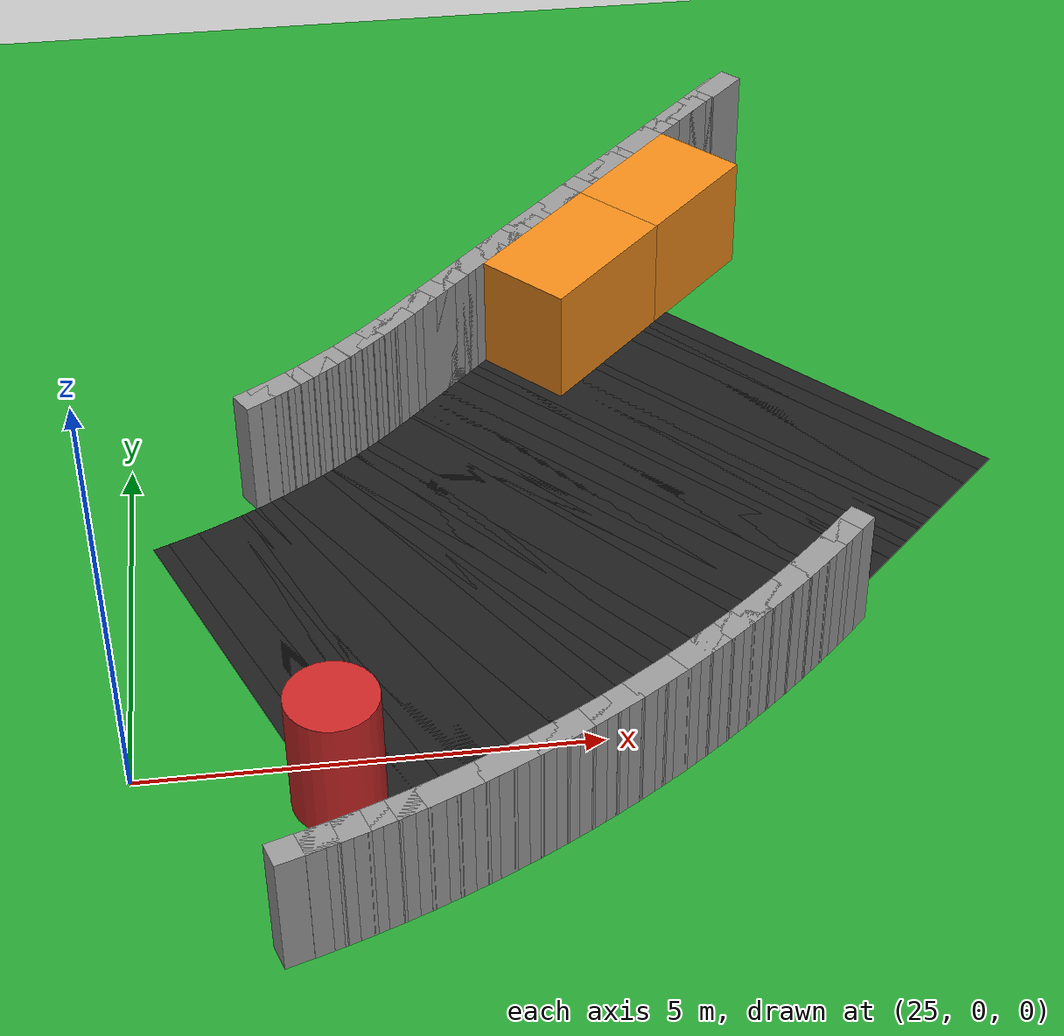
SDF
<sdf version="1.6">
 <world name="obstacle_asymturn">
  <include><uri>model://sun</uri></include>
  <model name="ground_plane">
   <static>true</static>
   <link name="link">
    <collision name="collision">
     <surface><friction><ode><mu>100</mu><mu2>50</mu2></ode></friction></surface>
     <geometry><plane><normal>0 0 1</normal><size>120 120</size></plane></geometry>
    </collision>
    <visual name="visual">
     <geometry><plane><normal>0 0 1</normal><size>120 120</size></plane></geometry>
     <material>
      <script><uri>file://media/materials/scripts/gazebo.material</uri><name>Gazebo/Green</name></script>
     </material>
    </visual>
   </link>
  </model>
  <model name="curbR_103">
   <static>true</static>
   <pose>26.771 -2.378 0.750 0 0 0.32036</pose>
   <link name="link">
    <collision name="collision"><geometry><box><size>0.673 0.300 1.500</size></box></geometry></collision>
    <visual name="visual">
     <geometry><box><size>0.673 0.300 1.500</size></box></geometry>
     <material>
      <script><uri>file://media/materials/scripts/gazebo.material</uri><name>Gazebo/Grey</name></script>
     </material>
    </visual>
   </link>
  </model>
  <model name="curbR_104">
   <static>true</static>
   <pose>27.067 -2.277 0.750 0 0 0.34103</pose>
   <link name="link">
    <collision name="collision"><geometry><box><size>0.673 0.300 1.500</size></box></geometry></collision>
    <visual name="visual">
     <geometry><box><size>0.673 0.300 1.500</size></box></geometry>
     <material>
      <script><uri>file://media/materials/scripts/gazebo.material</uri><name>Gazebo/Grey</name></script>
     </material>
    </visual>
   </link>
  </model>
  <model name="curbR_105">
   <static>true</static>
   <pose>27.361 -2.169 0.750 0 0 0.36170</pose>
   <link name="link">
    <collision name="collision"><geometry><box><size>0.673 0.300 1.500</size></box></geometry></collision>
    <visual name="visual">
     <geometry><box><size>0.673 0.300 1.500</size></box></geometry>
     <material>
      <script><uri>file://media/materials/scripts/gazebo.material</uri><name>Gazebo/Grey</name></script>
     </material>
    </visual>
   </link>
  </model>
  <model name="curbR_106">
   <static>true</static>
   <pose>27.652 -2.055 0.750 0 0 0.38236</pose>
   <link name="link">
    <collision name="collision"><geometry><box><size>0.673 0.300 1.500</size></box></geometry></collision>
    <visual name="visual">
     <geometry><box><size>0.673 0.300 1.500</size></box></geometry>
     <material>
      <script><uri>file://media/materials/scripts/gazebo.material</uri><name>Gazebo/Grey</name></script>
     </material>
    </visual>
   </link>
  </model>
  <model name="asphalt_107">
   <static>true</static>
   <pose>26.706 0.962 0.005 0 0 0.40303</pose>
   <link name="link">
    <visual name="visual">
     <geometry><box><size>0.608 6.000 0.010</size></box></geometry>
     <material>
      <script><uri>file://media/materials/scripts/gazebo.material</uri><name>Gazebo/Black</name></script>
     </material>
    </visual>
   </link>
  </model>
  <model name="curbR_107">
   <static>true</static>
   <pose>27.942 -1.935 0.750 0 0 0.40303</pose>
   <link name="link">
    <collision name="collision"><geometry><box><size>0.673 0.300 1.500</size></box></geometry></collision>
    <visual name="visual">
     <geometry><box><size>0.673 0.300 1.500</size></box></geometry>
     <material>
      <script><uri>file://media/materials/scripts/gazebo.material</uri><name>Gazebo/Grey</name></script>
     </material>
    </visual>
   </link>
  </model>
  <model name="asphalt_108">
   <static>true</static>
   <pose>26.933 1.062 0.005 0 0 0.42370</pose>
   <link name="link">
    <visual name="visual">
     <geometry><box><size>0.608 6.000 0.010</size></box></geometry>
     <material>
      <script><uri>file://media/materials/scripts/gazebo.material</uri><name>Gazebo/Black</name></script>
     </material>
    </visual>
   </link>
  </model>
  <model name="curbR_108">
   <static>true</static>
   <pose>28.228 -1.810 0.750 0 0 0.42370</pose>
   <link name="link">
    <collision name="collision"><geometry><box><size>0.673 0.300 1.500</size></box></geometry></collision>
    <visual name="visual">
     <geometry><box><size>0.673 0.300 1.500</size></box></geometry>
     <material>
      <script><uri>file://media/materials/scripts/gazebo.material</uri><name>Gazebo/Grey</name></script>
     </material>
    </visual>
   </link>
  </model>
  <model name="asphalt_109">
   <static>true</static>
   <pose>27.158 1.166 0.005 0 0 0.44437</pose>
   <link name="link">
    <visual name="visual">
     <geometry><box><size>0.608 6.000 0.010</size></box></geometry>
     <material>
      <script><uri>file://media/materials/scripts/gazebo.material</uri><name>Gazebo/Black</name></script>
     </material>
    </visual>
   </link>
  </model>
  <model name="curbR_109">
   <static>true</static>
   <pose>28.513 -1.678 0.750 0 0 0.44437</pose>
   <link name="link">
    <collision name="collision"><geometry><box><size>0.673 0.300 1.500</size></box></geometry></collision>
    <visual name="visual">
     <geometry><box><size>0.673 0.300 1.500</size></box></geometry>
     <material>
      <script><uri>file://media/materials/scripts/gazebo.material</uri><name>Gazebo/Grey</name></script>
     </material>
    </visual>
   </link>
  </model>
  <model name="asphalt_110">
   <static>true</static>
   <pose>27.381 1.275 0.005 0 0 0.46504</pose>
   <link name="link">
    <visual name="visual">
     <geometry><box><size>0.608 6.000 0.010</size></box></geometry>
     <material>
      <script><uri>file://media/materials/scripts/gazebo.material</uri><name>Gazebo/Black</name></script>
     </material>
    </visual>
   </link>
  </model>
  <model name="curbR_110">
   <static>true</static>
   <pose>28.794 -1.540 0.750 0 0 0.46504</pose>
   <link name="link">
    <collision name="collision"><geometry><box><size>0.673 0.300 1.500</size></box></geometry></collision>
    <visual name="visual">
     <geometry><box><size>0.673 0.300 1.500</size></box></geometry>
     <material>
      <script><uri>file://media/materials/scripts/gazebo.material</uri><name>Gazebo/Grey</name></script>
     </material>
    </visual>
   </link>
  </model>
  <model name="asphalt_111">
   <static>true</static>
   <pose>27.602 1.388 0.005 0 0 0.48571</pose>
   <link name="link">
    <visual name="visual">
     <geometry><box><size>0.608 6.000 0.010</size></box></geometry>
     <material>
      <script><uri>file://media/materials/scripts/gazebo.material</uri><name>Gazebo/Black</name></script>
     </material>
    </visual>
   </link>
  </model>
  <model name="curbR_111">
   <static>true</static>
   <pose>29.072 -1.397 0.750 0 0 0.48571</pose>
   <link name="link">
    <collision name="collision"><geometry><box><size>0.673 0.300 1.500</size></box></geometry></collision>
    <visual name="visual">
     <geometry><box><size>0.673 0.300 1.500</size></box></geometry>
     <material>
      <script><uri>file://media/materials/scripts/gazebo.material</uri><name>Gazebo/Grey</name></script>
     </material>
    </visual>
   </link>
  </model>
  <model name="asphalt_112">
   <static>true</static>
   <pose>27.820 1.506 0.005 0 0 0.50638</pose>
   <link name="link">
    <visual name="visual">
     <geometry><box><size>0.608 6.000 0.010</size></box></geometry>
     <material>
      <script><uri>file://media/materials/scripts/gazebo.material</uri><name>Gazebo/Black</name></script>
     </material>
    </visual>
   </link>
  </model>
  <model name="curbR_112">
   <static>true</static>
   <pose>29.348 -1.248 0.750 0 0 0.50638</pose>
   <link name="link">
    <collision name="collision"><geometry><box><size>0.673 0.300 1.500</size></box></geometry></collision>
    <visual name="visual">
     <geometry><box><size>0.673 0.300 1.500</size></box></geometry>
     <material>
      <script><uri>file://media/materials/scripts/gazebo.material</uri><name>Gazebo/Grey</name></script>
     </material>
    </visual>
   </link>
  </model>
  <model name="asphalt_113">
   <static>true</static>
   <pose>28.036 1.629 0.005 0 0 0.52704</pose>
   <link name="link">
    <visual name="visual">
     <geometry><box><size>0.608 6.000 0.010</size></box></geometry>
     <material>
      <script><uri>file://media/materials/scripts/gazebo.material</uri><name>Gazebo/Black</name></script>
     </material>
    </visual>
   </link>
  </model>
  <model name="curbR_113">
   <static>true</static>
   <pose>29.620 -1.093 0.750 0 0 0.52704</pose>
   <link name="link">
    <collision name="collision"><geometry><box><size>0.673 0.300 1.500</size></box></geometry></collision>
    <visual name="visual">
     <geometry><box><size>0.673 0.300 1.500</size></box></geometry>
     <material>
      <script><uri>file://media/materials/scripts/gazebo.material</uri><name>Gazebo/Grey</name></script>
     </material>
    </visual>
   </link>
  </model>
  <model name="asphalt_114">
   <static>true</static>
   <pose>28.249 1.756 0.005 0 0 0.54771</pose>
   <link name="link">
    <visual name="visual">
     <geometry><box><size>0.608 6.000 0.010</size></box></geometry>
     <material>
      <script><uri>file://media/materials/scripts/gazebo.material</uri><name>Gazebo/Black</name></script>
     </material>
    </visual>
   </link>
  </model>
  <model name="curbL_114">
   <static>true</static>
   <pose>26.608 4.445 0.750 0 0 0.54771</pose>
   <link name="link">
    <collision name="collision"><geometry><box><size>0.543 0.300 1.500</size></box></geometry></collision>
    <visual name="visual">
     <geometry><box><size>0.543 0.300 1.500</size></box></geometry>
     <material>
      <script><uri>file://media/materials/scripts/gazebo.material</uri><name>Gazebo/Grey</name></script>
     </material>
    </visual>
   </link>
  </model>
  <model name="curbR_114">
   <static>true</static>
   <pose>29.889 -0.933 0.750 0 0 0.54771</pose>
   <link name="link">
    <collision name="collision"><geometry><box><size>0.673 0.300 1.500</size></box></geometry></collision>
    <visual name="visual">
     <geometry><box><size>0.673 0.300 1.500</size></box></geometry>
     <material>
      <script><uri>file://media/materials/scripts/gazebo.material</uri><name>Gazebo/Grey</name></script>
     </material>
    </visual>
   </link>
  </model>
  <model name="asphalt_115">
   <static>true</static>
   <pose>28.459 1.887 0.005 0 0 0.56838</pose>
   <link name="link">
    <visual name="visual">
     <geometry><box><size>0.608 6.000 0.010</size></box></geometry>
     <material>
      <script><uri>file://media/materials/scripts/gazebo.material</uri><name>Gazebo/Black</name></script>
     </material>
    </visual>
   </link>
  </model>
  <model name="curbL_115">
   <static>true</static>
   <pose>26.764 4.542 0.750 0 0 0.56838</pose>
   <link name="link">
    <collision name="collision"><geometry><box><size>0.543 0.300 1.500</size></box></geometry></collision>
    <visual name="visual">
     <geometry><box><size>0.543 0.300 1.500</size></box></geometry>
     <material>
      <script><uri>file://media/materials/scripts/gazebo.material</uri><name>Gazebo/Grey</name></script>
     </material>
    </visual>
   </link>
  </model>
  <model name="curbR_115">
   <static>true</static>
   <pose>30.154 -0.767 0.750 0 0 0.56838</pose>
   <link name="link">
    <collision name="collision"><geometry><box><size>0.673 0.300 1.500</size></box></geometry></collision>
    <visual name="visual">
     <geometry><box><size>0.673 0.300 1.500</size></box></geometry>
     <material>
      <script><uri>file://media/materials/scripts/gazebo.material</uri><name>Gazebo/Grey</name></script>
     </material>
    </visual>
   </link>
  </model>
  <model name="asphalt_116">
   <static>true</static>
   <pose>28.667 2.023 0.005 0 0 0.58905</pose>
   <link name="link">
    <visual name="visual">
     <geometry><box><size>0.608 6.000 0.010</size></box></geometry>
     <material>
      <script><uri>file://media/materials/scripts/gazebo.material</uri><name>Gazebo/Black</name></script>
     </material>
    </visual>
   </link>
  </model>
  <model name="curbL_116">
   <static>true</static>
   <pose>26.917 4.642 0.750 0 0 0.58905</pose>
   <link name="link">
    <collision name="collision"><geometry><box><size>0.543 0.300 1.500</size></box></geometry></collision>
    <visual name="visual">
     <geometry><box><size>0.543 0.300 1.500</size></box></geometry>
     <material>
      <script><uri>file://media/materials/scripts/gazebo.material</uri><name>Gazebo/Grey</name></script>
     </material>
    </visual>
   </link>
  </model>
  <model name="curbR_116">
   <static>true</static>
   <pose>30.417 -0.596 0.750 0 0 0.58905</pose>
   <link name="link">
    <collision name="collision"><geometry><box><size>0.673 0.300 1.500</size></box></geometry></collision>
    <visual name="visual">
     <geometry><box><size>0.673 0.300 1.500</size></box></geometry>
     <material>
      <script><uri>file://media/materials/scripts/gazebo.material</uri><name>Gazebo/Grey</name></script>
     </material>
    </visual>
   </link>
  </model>
  <model name="asphalt_117">
   <static>true</static>
   <pose>28.871 2.163 0.005 0 0 0.60972</pose>
   <link name="link">
    <visual name="visual">
     <geometry><box><size>0.608 6.000 0.010</size></box></geometry>
     <material>
      <script><uri>file://media/materials/scripts/gazebo.material</uri><name>Gazebo/Black</name></script>
     </material>
    </visual>
   </link>
  </model>
  <model name="curbL_117">
   <static>true</static>
   <pose>27.068 4.745 0.750 0 0 0.60972</pose>
   <link name="link">
    <collision name="collision"><geometry><box><size>0.543 0.300 1.500</size></box></geometry></collision>
    <visual name="visual">
     <geometry><box><size>0.543 0.300 1.500</size></box></geometry>
     <material>
      <script><uri>file://media/materials/scripts/gazebo.material</uri><name>Gazebo/Grey</name></script>
     </material>
    </visual>
   </link>
  </model>
  <model name="curbR_117">
   <static>true</static>
   <pose>30.675 -0.419 0.750 0 0 0.60972</pose>
   <link name="link">
    <collision name="collision"><geometry><box><size>0.673 0.300 1.500</size></box></geometry></collision>
    <visual name="visual">
     <geometry><box><size>0.673 0.300 1.500</size></box></geometry>
     <material>
      <script><uri>file://media/materials/scripts/gazebo.material</uri><name>Gazebo/Grey</name></script>
     </material>
    </visual>
   </link>
  </model>
  <model name="asphalt_118">
   <static>true</static>
   <pose>29.073 2.307 0.005 0 0 0.63039</pose>
   <link name="link">
    <visual name="visual">
     <geometry><box><size>0.608 6.000 0.010</size></box></geometry>
     <material>
      <script><uri>file://media/materials/scripts/gazebo.material</uri><name>Gazebo/Black</name></script>
     </material>
    </visual>
   </link>
  </model>
  <model name="curbL_118">
   <static>true</static>
   <pose>27.217 4.851 0.750 0 0 0.63039</pose>
   <link name="link">
    <collision name="collision"><geometry><box><size>0.543 0.300 1.500</size></box></geometry></collision>
    <visual name="visual">
     <geometry><box><size>0.543 0.300 1.500</size></box></geometry>
     <material>
      <script><uri>file://media/materials/scripts/gazebo.material</uri><name>Gazebo/Grey</name></script>
     </material>
    </visual>
   </link>
  </model>
  <model name="curbR_118">
   <static>true</static>
   <pose>30.930 -0.237 0.750 0 0 0.63039</pose>
   <link name="link">
    <collision name="collision"><geometry><box><size>0.673 0.300 1.500</size></box></geometry></collision>
    <visual name="visual">
     <geometry><box><size>0.673 0.300 1.500</size></box></geometry>
     <material>
      <script><uri>file://media/materials/scripts/gazebo.material</uri><name>Gazebo/Grey</name></script>
     </material>
    </visual>
   </link>
  </model>
  <model name="asphalt_119">
   <static>true</static>
   <pose>29.272 2.455 0.005 0 0 0.65105</pose>
   <link name="link">
    <visual name="visual">
     <geometry><box><size>0.608 6.000 0.010</size></box></geometry>
     <material>
      <script><uri>file://media/materials/scripts/gazebo.material</uri><name>Gazebo/Black</name></script>
     </material>
    </visual>
   </link>
  </model>
  <model name="curbL_119">
   <static>true</static>
   <pose>27.363 4.961 0.750 0 0 0.65105</pose>
   <link name="link">
    <collision name="collision"><geometry><box><size>0.543 0.300 1.500</size></box></geometry></collision>
    <visual name="visual">
     <geometry><box><size>0.543 0.300 1.500</size></box></geometry>
     <material>
      <script><uri>file://media/materials/scripts/gazebo.material</uri><name>Gazebo/Grey</name></script>
     </material>
    </visual>
   </link>
  </model>
  <model name="curbR_119">
   <static>true</static>
   <pose>31.181 -0.050 0.750 0 0 0.65105</pose>
   <link name="link">
    <collision name="collision"><geometry><box><size>0.673 0.300 1.500</size></box></geometry></collision>
    <visual name="visual">
     <geometry><box><size>0.673 0.300 1.500</size></box></geometry>
     <material>
      <script><uri>file://media/materials/scripts/gazebo.material</uri><name>Gazebo/Grey</name></script>
     </material>
    </visual>
   </link>
  </model>
  <model name="asphalt_120">
   <static>true</static>
   <pose>29.468 2.608 0.005 0 0 0.67172</pose>
   <link name="link">
    <visual name="visual">
     <geometry><box><size>0.608 6.000 0.010</size></box></geometry>
     <material>
      <script><uri>file://media/materials/scripts/gazebo.material</uri><name>Gazebo/Black</name></script>
     </material>
    </visual>
   </link>
  </model>
  <model name="curbL_120">
   <static>true</static>
   <pose>27.508 5.073 0.750 0 0 0.67172</pose>
   <link name="link">
    <collision name="collision"><geometry><box><size>0.543 0.300 1.500</size></box></geometry></collision>
    <visual name="visual">
     <geometry><box><size>0.543 0.300 1.500</size></box></geometry>
     <material>
      <script><uri>file://media/materials/scripts/gazebo.material</uri><name>Gazebo/Grey</name></script>
     </material>
    </visual>
   </link>
  </model>
  <model name="curbR_120">
   <static>true</static>
   <pose>31.428 0.142 0.750 0 0 0.67172</pose>
   <link name="link">
    <collision name="collision"><geometry><box><size>0.673 0.300 1.500</size></box></geometry></collision>
    <visual name="visual">
     <geometry><box><size>0.673 0.300 1.500</size></box></geometry>
     <material>
      <script><uri>file://media/materials/scripts/gazebo.material</uri><name>Gazebo/Grey</name></script>
     </material>
    </visual>
   </link>
  </model>
  <model name="asphalt_121">
   <static>true</static>
   <pose>29.660 2.764 0.005 0 0 0.69239</pose>
   <link name="link">
    <visual name="visual">
     <geometry><box><size>0.608 6.000 0.010</size></box></geometry>
     <material>
      <script><uri>file://media/materials/scripts/gazebo.material</uri><name>Gazebo/Black</name></script>
     </material>
    </visual>
   </link>
  </model>
  <model name="curbL_121">
   <static>true</static>
   <pose>27.649 5.188 0.750 0 0 0.69239</pose>
   <link name="link">
    <collision name="collision"><geometry><box><size>0.543 0.300 1.500</size></box></geometry></collision>
    <visual name="visual">
     <geometry><box><size>0.543 0.300 1.500</size></box></geometry>
     <material>
      <script><uri>file://media/materials/scripts/gazebo.material</uri><name>Gazebo/Grey</name></script>
     </material>
    </visual>
   </link>
  </model>
  <model name="curbR_121">
   <static>true</static>
   <pose>31.671 0.339 0.750 0 0 0.69239</pose>
   <link name="link">
    <collision name="collision"><geometry><box><size>0.673 0.300 1.500</size></box></geometry></collision>
    <visual name="visual">
     <geometry><box><size>0.673 0.300 1.500</size></box></geometry>
     <material>
      <script><uri>file://media/materials/scripts/gazebo.material</uri><name>Gazebo/Grey</name></script>
     </material>
    </visual>
   </link>
  </model>
  <model name="asphalt_122">
   <static>true</static>
   <pose>29.850 2.924 0.005 0 0 0.71306</pose>
   <link name="link">
    <visual name="visual">
     <geometry><box><size>0.608 6.000 0.010</size></box></geometry>
     <material>
      <script><uri>file://media/materials/scripts/gazebo.material</uri><name>Gazebo/Black</name></script>
     </material>
    </visual>
   </link>
  </model>
  <model name="curbL_122">
   <static>true</static>
   <pose>27.789 5.307 0.750 0 0 0.71306</pose>
   <link name="link">
    <collision name="collision"><geometry><box><size>0.543 0.300 1.500</size></box></geometry></collision>
    <visual name="visual">
     <geometry><box><size>0.543 0.300 1.500</size></box></geometry>
     <material>
      <script><uri>file://media/materials/scripts/gazebo.material</uri><name>Gazebo/Grey</name></script>
     </material>
    </visual>
   </link>
  </model>
  <model name="curbR_122">
   <static>true</static>
   <pose>31.910 0.542 0.750 0 0 0.71306</pose>
   <link name="link">
    <collision name="collision"><geometry><box><size>0.673 0.300 1.500</size></box></geometry></collision>
    <visual name="visual">
     <geometry><box><size>0.673 0.300 1.500</size></box></geometry>
     <material>
      <script><uri>file://media/materials/scripts/gazebo.material</uri><name>Gazebo/Grey</name></script>
     </material>
    </visual>
   </link>
  </model>
  <model name="asphalt_123">
   <static>true</static>
   <pose>30.035 3.088 0.005 0 0 0.73373</pose>
   <link name="link">
    <visual name="visual">
     <geometry><box><size>0.608 6.000 0.010</size></box></geometry>
     <material>
      <script><uri>file://media/materials/scripts/gazebo.material</uri><name>Gazebo/Black</name></script>
     </material>
    </visual>
   </link>
  </model>
  <model name="curbL_123">
   <static>true</static>
   <pose>27.926 5.428 0.750 0 0 0.73373</pose>
   <link name="link">
    <collision name="collision"><geometry><box><size>0.543 0.300 1.500</size></box></geometry></collision>
    <visual name="visual">
     <geometry><box><size>0.543 0.300 1.500</size></box></geometry>
     <material>
      <script><uri>file://media/materials/scripts/gazebo.material</uri><name>Gazebo/Grey</name></script>
     </material>
    </visual>
   </link>
  </model>
  <model name="curbR_123">
   <static>true</static>
   <pose>32.145 0.749 0.750 0 0 0.73373</pose>
   <link name="link">
    <collision name="collision"><geometry><box><size>0.673 0.300 1.500</size></box></geometry></collision>
    <visual name="visual">
     <geometry><box><size>0.673 0.300 1.500</size></box></geometry>
     <material>
      <script><uri>file://media/materials/scripts/gazebo.material</uri><name>Gazebo/Grey</name></script>
     </material>
    </visual>
   </link>
  </model>
  <model name="asphalt_124">
   <static>true</static>
   <pose>30.218 3.256 0.005 0 0 0.75440</pose>
   <link name="link">
    <visual name="visual">
     <geometry><box><size>0.608 6.000 0.010</size></box></geometry>
     <material>
      <script><uri>file://media/materials/scripts/gazebo.material</uri><name>Gazebo/Black</name></script>
     </material>
    </visual>
   </link>
  </model>
  <model name="curbL_124">
   <static>true</static>
   <pose>28.061 5.552 0.750 0 0 0.75440</pose>
   <link name="link">
    <collision name="collision"><geometry><box><size>0.543 0.300 1.500</size></box></geometry></collision>
    <visual name="visual">
     <geometry><box><size>0.543 0.300 1.500</size></box></geometry>
     <material>
      <script><uri>file://media/materials/scripts/gazebo.material</uri><name>Gazebo/Grey</name></script>
     </material>
    </visual>
   </link>
  </model>
  <model name="curbR_124">
   <static>true</static>
   <pose>32.375 0.961 0.750 0 0 0.75440</pose>
   <link name="link">
    <collision name="collision"><geometry><box><size>0.673 0.300 1.500</size></box></geometry></collision>
    <visual name="visual">
     <geometry><box><size>0.673 0.300 1.500</size></box></geometry>
     <material>
      <script><uri>file://media/materials/scripts/gazebo.material</uri><name>Gazebo/Grey</name></script>
     </material>
    </visual>
   </link>
  </model>
  <model name="asphalt_125">
   <static>true</static>
   <pose>30.397 3.428 0.005 0 0 0.77506</pose>
   <link name="link">
    <visual name="visual">
     <geometry><box><size>0.608 6.000 0.010</size></box></geometry>
     <material>
      <script><uri>file://media/materials/scripts/gazebo.material</uri><name>Gazebo/Black</name></script>
     </material>
    </visual>
   </link>
  </model>
  <model name="curbL_125">
   <static>true</static>
   <pose>28.193 5.678 0.750 0 0 0.77506</pose>
   <link name="link">
    <collision name="collision"><geometry><box><size>0.543 0.300 1.500</size></box></geometry></collision>
    <visual name="visual">
     <geometry><box><size>0.543 0.300 1.500</size></box></geometry>
     <material>
      <script><uri>file://media/materials/scripts/gazebo.material</uri><name>Gazebo/Grey</name></script>
     </material>
    </visual>
   </link>
  </model>
  <model name="curbR_125">
   <static>true</static>
   <pose>32.601 1.178 0.750 0 0 0.77506</pose>
   <link name="link">
    <collision name="collision"><geometry><box><size>0.673 0.300 1.500</size></box></geometry></collision>
    <visual name="visual">
     <geometry><box><size>0.673 0.300 1.500</size></box></geometry>
     <material>
      <script><uri>file://media/materials/scripts/gazebo.material</uri><name>Gazebo/Grey</name></script>
     </material>
    </visual>
   </link>
  </model>
  <model name="asphalt_126">
   <static>true</static>
   <pose>30.574 3.603 0.005 0 0 0.78540</pose>
   <link name="link">
    <visual name="visual">
     <geometry><box><size>0.610 6.000 0.010</size></box></geometry>
     <material>
      <script><uri>file://media/materials/scripts/gazebo.material</uri><name>Gazebo/Black</name></script>
     </material>
    </visual>
   </link>
  </model>
  <model name="curbL_126">
   <static>true</static>
   <pose>28.346 5.831 0.750 0 0 0.78540</pose>
   <link name="link">
    <collision name="collision"><geometry><box><size>0.610 0.300 1.500</size></box></geometry></collision>
    <visual name="visual">
     <geometry><box><size>0.610 0.300 1.500</size></box></geometry>
     <material>
      <script><uri>file://media/materials/scripts/gazebo.material</uri><name>Gazebo/Grey</name></script>
     </material>
    </visual>
   </link>
  </model>
  <model name="curbR_126">
   <static>true</static>
   <pose>32.801 1.376 0.750 0 0 0.78540</pose>
   <link name="link">
    <collision name="collision"><geometry><box><size>0.610 0.300 1.500</size></box></geometry></collision>
    <visual name="visual">
     <geometry><box><size>0.610 0.300 1.500</size></box></geometry>
     <material>
      <script><uri>file://media/materials/scripts/gazebo.material</uri><name>Gazebo/Grey</name></script>
     </material>
    </visual>
   </link>
  </model>
  <model name="asphalt_127">
   <static>true</static>
   <pose>30.751 3.780 0.005 0 0 0.78540</pose>
   <link name="link">
    <visual name="visual">
     <geometry><box><size>0.610 6.000 0.010</size></box></geometry>
     <material>
      <script><uri>file://media/materials/scripts/gazebo.material</uri><name>Gazebo/Black</name></script>
     </material>
    </visual>
   </link>
  </model>
  <model name="curbL_127">
   <static>true</static>
   <pose>28.523 6.007 0.750 0 0 0.78540</pose>
   <link name="link">
    <collision name="collision"><geometry><box><size>0.610 0.300 1.500</size></box></geometry></collision>
    <visual name="visual">
     <geometry><box><size>0.610 0.300 1.500</size></box></geometry>
     <material>
      <script><uri>file://media/materials/scripts/gazebo.material</uri><name>Gazebo/Grey</name></script>
     </material>
    </visual>
   </link>
  </model>
  <model name="asphalt_128">
   <static>true</static>
   <pose>30.927 3.957 0.005 0 0 0.78540</pose>
   <link name="link">
    <visual name="visual">
     <geometry><box><size>0.610 6.000 0.010</size></box></geometry>
     <material>
      <script><uri>file://media/materials/scripts/gazebo.material</uri><name>Gazebo/Black</name></script>
     </material>
    </visual>
   </link>
  </model>
  <model name="curbL_128">
   <static>true</static>
   <pose>28.700 6.184 0.750 0 0 0.78540</pose>
   <link name="link">
    <collision name="collision"><geometry><box><size>0.610 0.300 1.500</size></box></geometry></collision>
    <visual name="visual">
     <geometry><box><size>0.610 0.300 1.500</size></box></geometry>
     <material>
      <script><uri>file://media/materials/scripts/gazebo.material</uri><name>Gazebo/Grey</name></script>
     </material>
    </visual>
   </link>
  </model>
  <model name="asphalt_129">
   <static>true</static>
   <pose>31.104 4.133 0.005 0 0 0.78540</pose>
   <link name="link">
    <visual name="visual">
     <geometry><box><size>0.610 6.000 0.010</size></box></geometry>
     <material>
      <script><uri>file://media/materials/scripts/gazebo.material</uri><name>Gazebo/Black</name></script>
     </material>
    </visual>
   </link>
  </model>
  <model name="curbL_129">
   <static>true</static>
   <pose>28.877 6.361 0.750 0 0 0.78540</pose>
   <link name="link">
    <collision name="collision"><geometry><box><size>0.610 0.300 1.500</size></box></geometry></collision>
    <visual name="visual">
     <geometry><box><size>0.610 0.300 1.500</size></box></geometry>
     <material>
      <script><uri>file://media/materials/scripts/gazebo.material</uri><name>Gazebo/Grey</name></script>
     </material>
    </visual>
   </link>
  </model>
  <model name="asphalt_130">
   <static>true</static>
   <pose>31.281 4.310 0.005 0 0 0.78540</pose>
   <link name="link">
    <visual name="visual">
     <geometry><box><size>0.610 6.000 0.010</size></box></geometry>
     <material>
      <script><uri>file://media/materials/scripts/gazebo.material</uri><name>Gazebo/Black</name></script>
     </material>
    </visual>
   </link>
  </model>
  <model name="curbL_130">
   <static>true</static>
   <pose>29.054 6.538 0.750 0 0 0.78540</pose>
   <link name="link">
    <collision name="collision"><geometry><box><size>0.610 0.300 1.500</size></box></geometry></collision>
    <visual name="visual">
     <geometry><box><size>0.610 0.300 1.500</size></box></geometry>
     <material>
      <script><uri>file://media/materials/scripts/gazebo.material</uri><name>Gazebo/Grey</name></script>
     </material>
    </visual>
   </link>
  </model>
  <model name="asphalt_131">
   <static>true</static>
   <pose>31.458 4.487 0.005 0 0 0.78540</pose>
   <link name="link">
    <visual name="visual">
     <geometry><box><size>0.610 6.000 0.010</size></box></geometry>
     <material>
      <script><uri>file://media/materials/scripts/gazebo.material</uri><name>Gazebo/Black</name></script>
     </material>
    </visual>
   </link>
  </model>
  <model name="curbL_131">
   <static>true</static>
   <pose>29.230 6.714 0.750 0 0 0.78540</pose>
   <link name="link">
    <collision name="collision"><geometry><box><size>0.610 0.300 1.500</size></box></geometry></collision>
    <visual name="visual">
     <geometry><box><size>0.610 0.300 1.500</size></box></geometry>
     <material>
      <script><uri>file://media/materials/scripts/gazebo.material</uri><name>Gazebo/Grey</name></script>
     </material>
    </visual>
   </link>
  </model>
  <model name="asphalt_132">
   <static>true</static>
   <pose>31.634 4.664 0.005 0 0 0.78540</pose>
   <link name="link">
    <visual name="visual">
     <geometry><box><size>0.610 6.000 0.010</size></box></geometry>
     <material>
      <script><uri>file://media/materials/scripts/gazebo.material</uri><name>Gazebo/Black</name></script>
     </material>
    </visual>
   </link>
  </model>
  <model name="curbL_132">
   <static>true</static>
   <pose>29.407 6.891 0.750 0 0 0.78540</pose>
   <link name="link">
    <collision name="collision"><geometry><box><size>0.610 0.300 1.500</size></box></geometry></collision>
    <visual name="visual">
     <geometry><box><size>0.610 0.300 1.500</size></box></geometry>
     <material>
      <script><uri>file://media/materials/scripts/gazebo.material</uri><name>Gazebo/Grey</name></script>
     </material>
    </visual>
   </link>
  </model>
  <model name="asphalt_133">
   <static>true</static>
   <pose>31.811 4.841 0.005 0 0 0.78540</pose>
   <link name="link">
    <visual name="visual">
     <geometry><box><size>0.610 6.000 0.010</size></box></geometry>
     <material>
      <script><uri>file://media/materials/scripts/gazebo.material</uri><name>Gazebo/Black</name></script>
     </material>
    </visual>
   </link>
  </model>
  <model name="curbL_133">
   <static>true</static>
   <pose>29.584 7.068 0.750 0 0 0.78540</pose>
   <link name="link">
    <collision name="collision"><geometry><box><size>0.610 0.300 1.500</size></box></geometry></collision>
    <visual name="visual">
     <geometry><box><size>0.610 0.300 1.500</size></box></geometry>
     <material>
      <script><uri>file://media/materials/scripts/gazebo.material</uri><name>Gazebo/Grey</name></script>
     </material>
    </visual>
   </link>
  </model>
  <model name="asphalt_134">
   <static>true</static>
   <pose>31.988 5.017 0.005 0 0 0.78540</pose>
   <link name="link">
    <visual name="visual">
     <geometry><box><size>0.610 6.000 0.010</size></box></geometry>
     <material>
      <script><uri>file://media/materials/scripts/gazebo.material</uri><name>Gazebo/Black</name></script>
     </material>
    </visual>
   </link>
  </model>
  <model name="curbL_134">
   <static>true</static>
   <pose>29.761 7.245 0.750 0 0 0.78540</pose>
   <link name="link">
    <collision name="collision"><geometry><box><size>0.610 0.300 1.500</size></box></geometry></collision>
    <visual name="visual">
     <geometry><box><size>0.610 0.300 1.500</size></box></geometry>
     <material>
      <script><uri>file://media/materials/scripts/gazebo.material</uri><name>Gazebo/Grey</name></script>
     </material>
    </visual>
   </link>
  </model>
  <model name="asphalt_135">
   <static>true</static>
   <pose>32.165 5.194 0.005 0 0 0.78540</pose>
   <link name="link">
    <visual name="visual">
     <geometry><box><size>0.610 6.000 0.010</size></box></geometry>
     <material>
      <script><uri>file://media/materials/scripts/gazebo.material</uri><name>Gazebo/Black</name></script>
     </material>
    </visual>
   </link>
  </model>
  <model name="curbL_135">
   <static>true</static>
   <pose>29.937 7.422 0.750 0 0 0.78540</pose>
   <link name="link">
    <collision name="collision"><geometry><box><size>0.610 0.300 1.500</size></box></geometry></collision>
    <visual name="visual">
     <geometry><box><size>0.610 0.300 1.500</size></box></geometry>
     <material>
      <script><uri>file://media/materials/scripts/gazebo.material</uri><name>Gazebo/Grey</name></script>
     </material>
    </visual>
   </link>
  </model>
  <model name="asphalt_136">
   <static>true</static>
   <pose>32.342 5.371 0.005 0 0 0.78540</pose>
   <link name="link">
    <visual name="visual">
     <geometry><box><size>0.610 6.000 0.010</size></box></geometry>
     <material>
      <script><uri>file://media/materials/scripts/gazebo.material</uri><name>Gazebo/Black</name></script>
     </material>
    </visual>
   </link>
  </model>
  <model name="curbL_136">
   <static>true</static>
   <pose>30.114 7.598 0.750 0 0 0.78540</pose>
   <link name="link">
    <collision name="collision"><geometry><box><size>0.610 0.300 1.500</size></box></geometry></collision>
    <visual name="visual">
     <geometry><box><size>0.610 0.300 1.500</size></box></geometry>
     <material>
      <script><uri>file://media/materials/scripts/gazebo.material</uri><name>Gazebo/Grey</name></script>
     </material>
    </visual>
   </link>
  </model>
  <model name="asphalt_137">
   <static>true</static>
   <pose>32.518 5.548 0.005 0 0 0.78540</pose>
   <link name="link">
    <visual name="visual">
     <geometry><box><size>0.610 6.000 0.010</size></box></geometry>
     <material>
      <script><uri>file://media/materials/scripts/gazebo.material</uri><name>Gazebo/Black</name></script>
     </material>
    </visual>
   </link>
  </model>
  <model name="curbL_137">
   <static>true</static>
   <pose>30.291 7.775 0.750 0 0 0.78540</pose>
   <link name="link">
    <collision name="collision"><geometry><box><size>0.610 0.300 1.500</size></box></geometry></collision>
    <visual name="visual">
     <geometry><box><size>0.610 0.300 1.500</size></box></geometry>
     <material>
      <script><uri>file://media/materials/scripts/gazebo.material</uri><name>Gazebo/Grey</name></script>
     </material>
    </visual>
   </link>
  </model>
  <model name="asphalt_138">
   <static>true</static>
   <pose>32.695 5.724 0.005 0 0 0.78540</pose>
   <link name="link">
    <visual name="visual">
     <geometry><box><size>0.610 6.000 0.010</size></box></geometry>
     <material>
      <script><uri>file://media/materials/scripts/gazebo.material</uri><name>Gazebo/Black</name></script>
     </material>
    </visual>
   </link>
  </model>
  <model name="curbL_138">
   <static>true</static>
   <pose>30.468 7.952 0.750 0 0 0.78540</pose>
   <link name="link">
    <collision name="collision"><geometry><box><size>0.610 0.300 1.500</size></box></geometry></collision>
    <visual name="visual">
     <geometry><box><size>0.610 0.300 1.500</size></box></geometry>
     <material>
      <script><uri>file://media/materials/scripts/gazebo.material</uri><name>Gazebo/Grey</name></script>
     </material>
    </visual>
   </link>
  </model>
  <model name="asphalt_139">
   <static>true</static>
   <pose>32.872 5.901 0.005 0 0 0.78540</pose>
   <link name="link">
    <visual name="visual">
     <geometry><box><size>0.610 6.000 0.010</size></box></geometry>
     <material>
      <script><uri>file://media/materials/scripts/gazebo.material</uri><name>Gazebo/Black</name></script>
     </material>
    </visual>
   </link>
  </model>
  <model name="curbL_139">
   <static>true</static>
   <pose>30.645 8.129 0.750 0 0 0.78540</pose>
   <link name="link">
    <collision name="collision"><geometry><box><size>0.610 0.300 1.500</size></box></geometry></collision>
    <visual name="visual">
     <geometry><box><size>0.610 0.300 1.500</size></box></geometry>
     <material>
      <script><uri>file://media/materials/scripts/gazebo.material</uri><name>Gazebo/Grey</name></script>
     </material>
    </visual>
   </link>
  </model>
  <model name="curbL_140">
   <static>true</static>
   <pose>30.821 8.305 0.750 0 0 0.78540</pose>
   <link name="link">
    <collision name="collision"><geometry><box><size>0.610 0.300 1.500</size></box></geometry></collision>
    <visual name="visual">
     <geometry><box><size>0.610 0.300 1.500</size></box></geometry>
     <material>
      <script><uri>file://media/materials/scripts/gazebo.material</uri><name>Gazebo/Grey</name></script>
     </material>
    </visual>
   </link>
  </model>
  <model name="curbL_141">
   <static>true</static>
   <pose>30.998 8.482 0.750 0 0 0.78540</pose>
   <link name="link">
    <collision name="collision"><geometry><box><size>0.610 0.300 1.500</size></box></geometry></collision>
    <visual name="visual">
     <geometry><box><size>0.610 0.300 1.500</size></box></geometry>
     <material>
      <script><uri>file://media/materials/scripts/gazebo.material</uri><name>Gazebo/Grey</name></script>
     </material>
    </visual>
   </link>
  </model>
  <model name="curbL_142">
   <static>true</static>
   <pose>31.175 8.659 0.750 0 0 0.78540</pose>
   <link name="link">
    <collision name="collision"><geometry><box><size>0.610 0.300 1.500</size></box></geometry></collision>
    <visual name="visual">
     <geometry><box><size>0.610 0.300 1.500</size></box></geometry>
     <material>
      <script><uri>file://media/materials/scripts/gazebo.material</uri><name>Gazebo/Grey</name></script>
     </material>
    </visual>
   </link>
  </model>
  <model name="curbL_143">
   <static>true</static>
   <pose>31.352 8.836 0.750 0 0 0.78540</pose>
   <link name="link">
    <collision name="collision"><geometry><box><size>0.610 0.300 1.500</size></box></geometry></collision>
    <visual name="visual">
     <geometry><box><size>0.610 0.300 1.500</size></box></geometry>
     <material>
      <script><uri>file://media/materials/scripts/gazebo.material</uri><name>Gazebo/Grey</name></script>
     </material>
    </visual>
   </link>
  </model>
  <model name="curbL_144">
   <static>true</static>
   <pose>31.528 9.013 0.750 0 0 0.78540</pose>
   <link name="link">
    <collision name="collision"><geometry><box><size>0.610 0.300 1.500</size></box></geometry></collision>
    <visual name="visual">
     <geometry><box><size>0.610 0.300 1.500</size></box></geometry>
     <material>
      <script><uri>file://media/materials/scripts/gazebo.material</uri><name>Gazebo/Grey</name></script>
     </material>
    </visual>
   </link>
  </model>
  <model name="curbL_145">
   <static>true</static>
   <pose>31.705 9.189 0.750 0 0 0.78540</pose>
   <link name="link">
    <collision name="collision"><geometry><box><size>0.610 0.300 1.500</size></box></geometry></collision>
    <visual name="visual">
     <geometry><box><size>0.610 0.300 1.500</size></box></geometry>
     <material>
      <script><uri>file://media/materials/scripts/gazebo.material</uri><name>Gazebo/Grey</name></script>
     </material>
    </visual>
   </link>
  </model>
  <model name="curbL_146">
   <static>true</static>
   <pose>31.882 9.366 0.750 0 0 0.78540</pose>
   <link name="link">
    <collision name="collision"><geometry><box><size>0.610 0.300 1.500</size></box></geometry></collision>
    <visual name="visual">
     <geometry><box><size>0.610 0.300 1.500</size></box></geometry>
     <material>
      <script><uri>file://media/materials/scripts/gazebo.material</uri><name>Gazebo/Grey</name></script>
     </material>
    </visual>
   </link>
  </model>
  <model name="curbL_147">
   <static>true</static>
   <pose>32.059 9.543 0.750 0 0 0.78540</pose>
   <link name="link">
    <collision name="collision"><geometry><box><size>0.610 0.300 1.500</size></box></geometry></collision>
    <visual name="visual">
     <geometry><box><size>0.610 0.300 1.500</size></box></geometry>
     <material>
      <script><uri>file://media/materials/scripts/gazebo.material</uri><name>Gazebo/Grey</name></script>
     </material>
    </visual>
   </link>
  </model>
  <model name="curbL_148">
   <static>true</static>
   <pose>32.236 9.720 0.750 0 0 0.78540</pose>
   <link name="link">
    <collision name="collision"><geometry><box><size>0.610 0.300 1.500</size></box></geometry></collision>
    <visual name="visual">
     <geometry><box><size>0.610 0.300 1.500</size></box></geometry>
     <material>
      <script><uri>file://media/materials/scripts/gazebo.material</uri><name>Gazebo/Grey</name></script>
     </material>
    </visual>
   </link>
  </model>
  <model name="curbL_149">
   <static>true</static>
   <pose>32.412 9.896 0.750 0 0 0.78540</pose>
   <link name="link">
    <collision name="collision"><geometry><box><size>0.610 0.300 1.500</size></box></geometry></collision>
    <visual name="visual">
     <geometry><box><size>0.610 0.300 1.500</size></box></geometry>
     <material>
      <script><uri>file://media/materials/scripts/gazebo.material</uri><name>Gazebo/Grey</name></script>
     </material>
    </visual>
   </link>
  </model>
  <model name="curbL_150">
   <static>true</static>
   <pose>32.589 10.073 0.750 0 0 0.78540</pose>
   <link name="link">
    <collision name="collision"><geometry><box><size>0.610 0.300 1.500</size></box></geometry></collision>
    <visual name="visual">
     <geometry><box><size>0.610 0.300 1.500</size></box></geometry>
     <material>
      <script><uri>file://media/materials/scripts/gazebo.material</uri><name>Gazebo/Grey</name></script>
     </material>
    </visual>
   </link>
  </model>
  <model name="curbL_151">
   <static>true</static>
   <pose>32.766 10.250 0.750 0 0 0.78540</pose>
   <link name="link">
    <collision name="collision"><geometry><box><size>0.610 0.300 1.500</size></box></geometry></collision>
    <visual name="visual">
     <geometry><box><size>0.610 0.300 1.500</size></box></geometry>
     <material>
      <script><uri>file://media/materials/scripts/gazebo.material</uri><name>Gazebo/Grey</name></script>
     </material>
    </visual>
   </link>
  </model>
  <model name="curbL_152">
   <static>true</static>
   <pose>32.960 10.409 0.750 0 0 0.78540</pose>
   <link name="link">
    <collision name="collision"><geometry><box><size>0.610 0.300 1.500</size></box></geometry></collision>
    <visual name="visual">
     <geometry><box><size>0.610 0.300 1.500</size></box></geometry>
     <material>
      <script><uri>file://media/materials/scripts/gazebo.material</uri><name>Gazebo/Grey</name></script>
     </material>
    </visual>
   </link>
  </model>
  <model name="obs_1">
   <static>true</static>
   <pose>30.521 6.944 0.750 0 0 0.78540</pose>
   <link name="link">
    <collision name="collision"><geometry><box><size>1.950 1.200 1.500</size></box></geometry></collision>
    <visual name="visual">
     <geometry><box><size>1.950 1.200 1.500</size></box></geometry>
     <material>
      <script><uri>file://media/materials/scripts/gazebo.material</uri><name>Gazebo/Orange</name></script>
     </material>
    </visual>
   </link>
  </model>
  <model name="obs_2">
   <static>true</static>
   <pose>31.758 8.182 0.750 0 0 0.78540</pose>
   <link name="link">
    <collision name="collision"><geometry><box><size>1.950 1.200 1.500</size></box></geometry></collision>
    <visual name="visual">
     <geometry><box><size>1.950 1.200 1.500</size></box></geometry>
     <material>
      <script><uri>file://media/materials/scripts/gazebo.material</uri><name>Gazebo/Orange</name></script>
     </material>
    </visual>
   </link>
  </model>
  <model name="obs_6">
   <static>true</static>
   <pose>27.153 -0.478 0.750 0 0 0</pose>
   <link name="link">
    <collision name="collision">
     <geometry><cylinder><radius>0.500</radius><length>1.500</length></cylinder></geometry>
    </collision>
    <visual name="visual">
     <geometry><cylinder><radius>0.500</radius><length>1.500</length></cylinder></geometry>
     <material>
      <script><uri>file://media/materials/scripts/gazebo.material</uri><name>Gazebo/Red</name></script>
     </material>
    </visual>
   </link>
  </model>
 </world>
</sdf>
